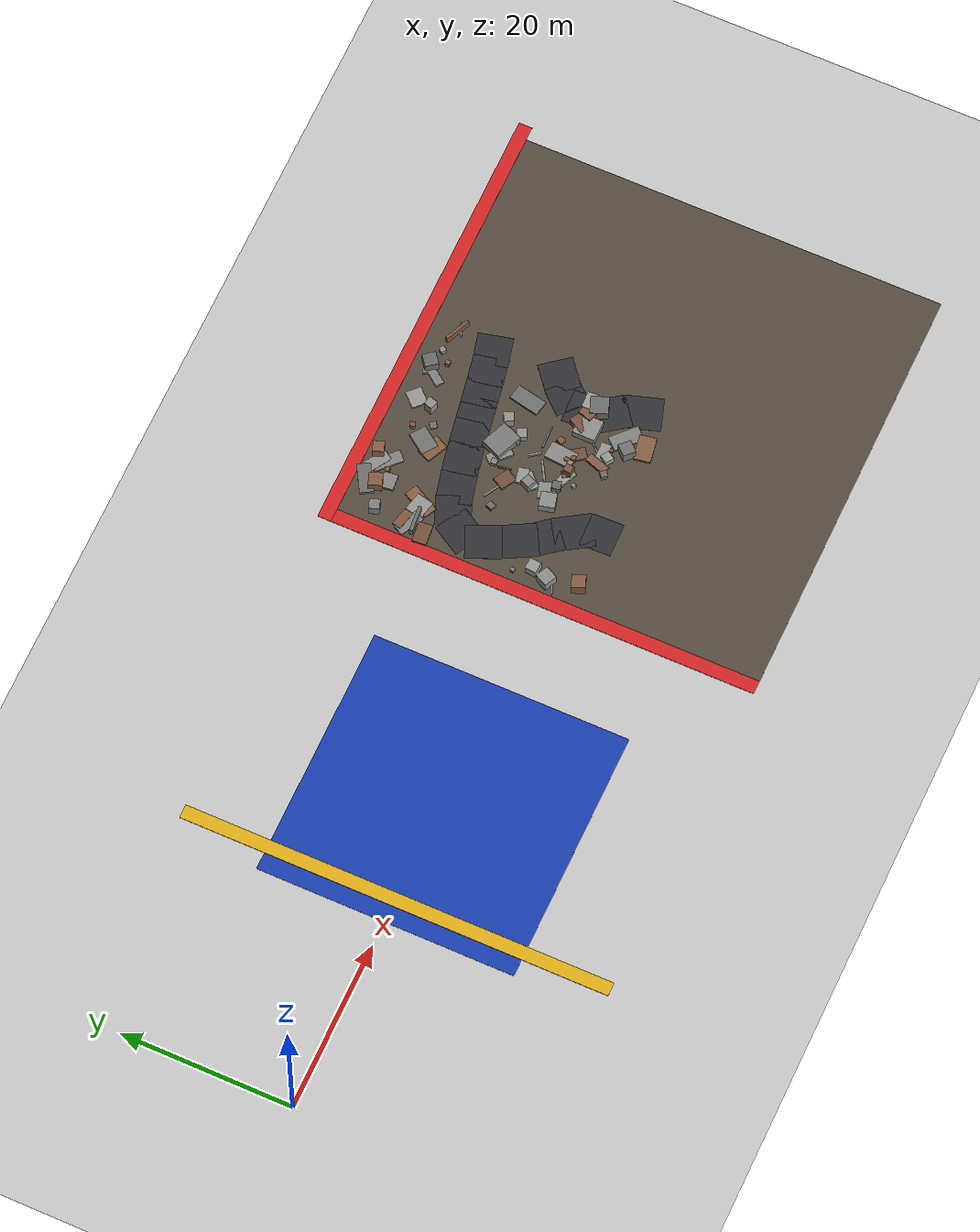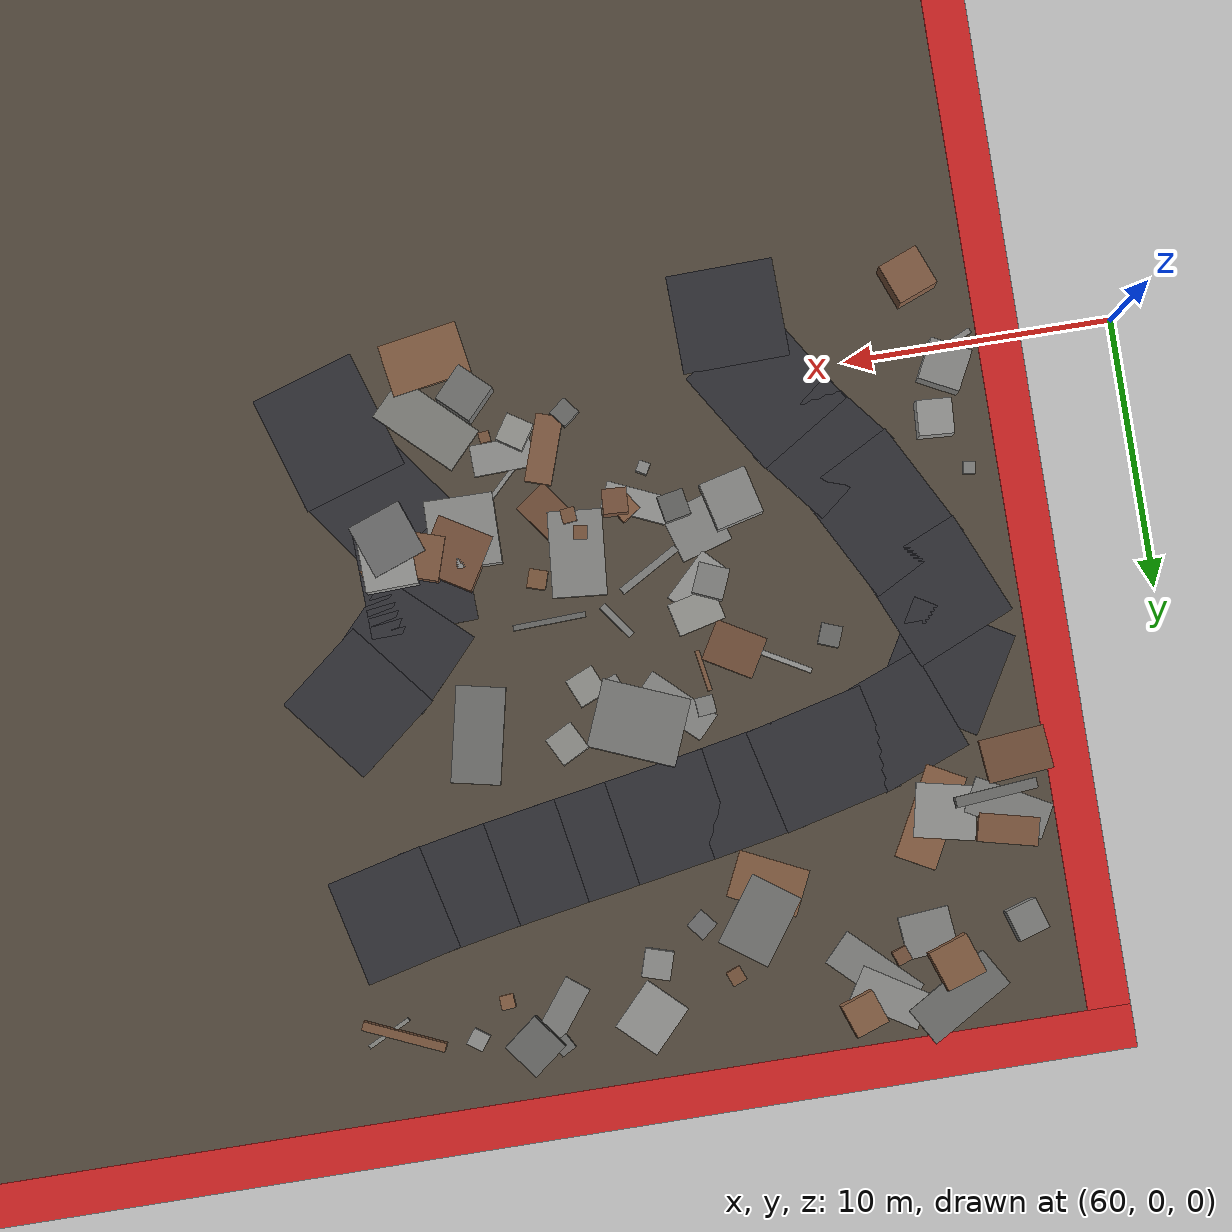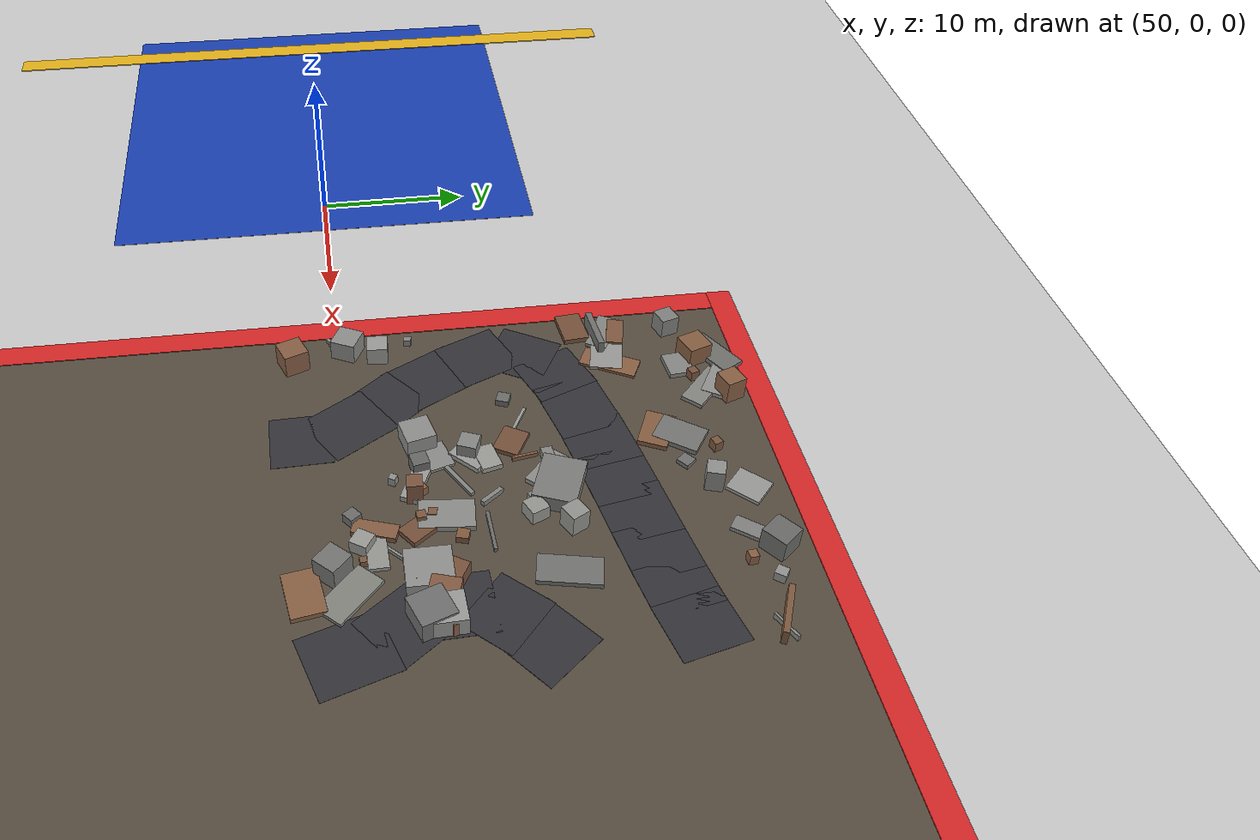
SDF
<sdf version="1.6">
 <world name="navitas_arena">
  <model name="ground_plane">
   <static>true</static>
   <link name="link">
    <collision name="collision">
     <geometry><plane><normal>0 0 1</normal><size>400 400</size></plane></geometry>
     <surface><friction><ode><mu>0.8</mu><mu2>0.8</mu2></ode></friction></surface>
    </collision>
    <visual name="visual">
     <cast_shadows>false</cast_shadows>
     <geometry><plane><normal>0 0 1</normal><size>400 400</size></plane></geometry>
     <material>
      <script><uri>file://media/materials/scripts/gazebo.material</uri><name>Gazebo/Grey</name></script>
     </material>
    </visual>
   </link>
  </model>
  <model name="landing">
   <static>true</static>
   <pose>38.000 0.000 0.010 0 0 0.000</pose>
   <link name="link">
    <collision name="col"><geometry><box><size>30.000 30.000 0.020</size></box></geometry></collision>
    <visual name="vis">
     <geometry><box><size>30.000 30.000 0.020</size></box></geometry>
     <material><ambient>0.10 0.25 0.70 1</ambient><diffuse>0.10 0.25 0.70 1</diffuse></material>
    </visual>
   </link>
  </model>
  <model name="brd_orta_E">
   <static>true</static>
   <pose>25.800 0.000 0.040 0 0 0.000</pose>
   <link name="link">
    <collision name="col"><geometry><box><size>1.600 50.000 0.080</size></box></geometry></collision>
    <visual name="vis">
     <geometry><box><size>1.600 50.000 0.080</size></box></geometry>
     <material><ambient>0.90 0.70 0.10 1</ambient><diffuse>0.90 0.70 0.10 1</diffuse></material>
    </visual>
   </link>
  </model>
  <model name="gd_zor">
   <static>true</static>
   <pose>90.000 0.000 0.010 0 0 0.000</pose>
   <link name="link">
    <collision name="col"><geometry><box><size>50.000 50.000 0.020</size></box></geometry></collision>
    <visual name="vis">
     <geometry><box><size>50.000 50.000 0.020</size></box></geometry>
     <material><ambient>0.34 0.30 0.25 1</ambient><diffuse>0.34 0.30 0.25 1</diffuse></material>
    </visual>
   </link>
  </model>
  <model name="brd_zor_N">
   <static>true</static>
   <pose>90.000 25.800 0.040 0 0 0.000</pose>
   <link name="link">
    <collision name="col"><geometry><box><size>53.200 1.600 0.080</size></box></geometry></collision>
    <visual name="vis">
     <geometry><box><size>53.200 1.600 0.080</size></box></geometry>
     <material><ambient>0.85 0.15 0.15 1</ambient><diffuse>0.85 0.15 0.15 1</diffuse></material>
    </visual>
   </link>
  </model>
  <model name="brd_zor_W">
   <static>true</static>
   <pose>64.200 0.000 0.040 0 0 0.000</pose>
   <link name="link">
    <collision name="col"><geometry><box><size>1.600 50.000 0.080</size></box></geometry></collision>
    <visual name="vis">
     <geometry><box><size>1.600 50.000 0.080</size></box></geometry>
     <material><ambient>0.85 0.15 0.15 1</ambient><diffuse>0.85 0.15 0.15 1</diffuse></material>
    </visual>
   </link>
  </model>
  <model name="road_zor_1_8">
   <static>true</static>
   <pose>73.981 -2.400 0.040 0 0 1.596</pose>
   <link name="link">
    <collision name="col"><geometry><box><size>3.701 4.000 0.020</size></box></geometry></collision>
    <visual name="vis">
     <geometry><box><size>3.701 4.000 0.020</size></box></geometry>
     <material><ambient>0.20 0.20 0.22 1</ambient><diffuse>0.20 0.20 0.22 1</diffuse></material>
    </visual>
   </link>
  </model>
  <model name="road_zor_1_9">
   <static>true</static>
   <pose>72.999 0.500 0.040 0 0 2.134</pose>
   <link name="link">
    <collision name="col"><geometry><box><size>4.448 4.000 0.020</size></box></geometry></collision>
    <visual name="vis">
     <geometry><box><size>4.448 4.000 0.020</size></box></geometry>
     <material><ambient>0.20 0.20 0.22 1</ambient><diffuse>0.20 0.20 0.22 1</diffuse></material>
    </visual>
   </link>
  </model>
  <model name="road_zor_1_10">
   <static>true</static>
   <pose>71.245 3.000 0.040 0 0 2.250</pose>
   <link name="link">
    <collision name="col"><geometry><box><size>3.470 4.000 0.020</size></box></geometry></collision>
    <visual name="vis">
     <geometry><box><size>3.470 4.000 0.020</size></box></geometry>
     <material><ambient>0.20 0.20 0.22 1</ambient><diffuse>0.20 0.20 0.22 1</diffuse></material>
    </visual>
   </link>
  </model>
  <model name="road_zor_1_11">
   <static>true</static>
   <pose>69.513 5.720 0.040 0 0 2.064</pose>
   <link name="link">
    <collision name="col"><geometry><box><size>4.806 4.000 0.020</size></box></geometry></collision>
    <visual name="vis">
     <geometry><box><size>4.806 4.000 0.020</size></box></geometry>
     <material><ambient>0.20 0.20 0.22 1</ambient><diffuse>0.20 0.20 0.22 1</diffuse></material>
    </visual>
   </link>
  </model>
  <model name="road_zor_1_12">
   <static>true</static>
   <pose>67.954 8.910 0.040 0 0 1.978</pose>
   <link name="link">
    <collision name="col"><geometry><box><size>4.101 4.000 0.020</size></box></geometry></collision>
    <visual name="vis">
     <geometry><box><size>4.101 4.000 0.020</size></box></geometry>
     <material><ambient>0.20 0.20 0.22 1</ambient><diffuse>0.20 0.20 0.22 1</diffuse></material>
    </visual>
   </link>
  </model>
  <model name="road_zor_1_13">
   <static>true</static>
   <pose>68.090 11.690 0.040 0 0 1.040</pose>
   <link name="link">
    <collision name="col"><geometry><box><size>3.938 4.000 0.020</size></box></geometry></collision>
    <visual name="vis">
     <geometry><box><size>3.938 4.000 0.020</size></box></geometry>
     <material><ambient>0.20 0.20 0.22 1</ambient><diffuse>0.20 0.20 0.22 1</diffuse></material>
    </visual>
   </link>
  </model>
  <model name="road_zor_1_14">
   <static>true</static>
   <pose>70.090 13.478 0.040 0 0 0.371</pose>
   <link name="link">
    <collision name="col"><geometry><box><size>3.540 4.000 0.020</size></box></geometry></collision>
    <visual name="vis">
     <geometry><box><size>3.540 4.000 0.020</size></box></geometry>
     <material><ambient>0.20 0.20 0.22 1</ambient><diffuse>0.20 0.20 0.22 1</diffuse></material>
    </visual>
   </link>
  </model>
  <model name="road_zor_1_15">
   <static>true</static>
   <pose>73.086 14.385 0.040 0 0 0.238</pose>
   <link name="link">
    <collision name="col"><geometry><box><size>4.534 4.000 0.020</size></box></geometry></collision>
    <visual name="vis">
     <geometry><box><size>4.534 4.000 0.020</size></box></geometry>
     <material><ambient>0.20 0.20 0.22 1</ambient><diffuse>0.20 0.20 0.22 1</diffuse></material>
    </visual>
   </link>
  </model>
  <model name="road_zor_1_16">
   <static>true</static>
   <pose>76.209 15.077 0.040 0 0 0.192</pose>
   <link name="link">
    <collision name="col"><geometry><box><size>3.666 4.000 0.020</size></box></geometry></collision>
    <visual name="vis">
     <geometry><box><size>3.666 4.000 0.020</size></box></geometry>
     <material><ambient>0.20 0.20 0.22 1</ambient><diffuse>0.20 0.20 0.22 1</diffuse></material>
    </visual>
   </link>
  </model>
  <model name="road_zor_1_17">
   <static>true</static>
   <pose>78.987 15.592 0.040 0 0 0.175</pose>
   <link name="link">
    <collision name="col"><geometry><box><size>3.784 4.000 0.020</size></box></geometry></collision>
    <visual name="vis">
     <geometry><box><size>3.784 4.000 0.020</size></box></geometry>
     <material><ambient>0.20 0.20 0.22 1</ambient><diffuse>0.20 0.20 0.22 1</diffuse></material>
    </visual>
   </link>
  </model>
  <model name="road_zor_1_18">
   <static>true</static>
   <pose>81.819 16.085 0.040 0 0 0.169</pose>
   <link name="link">
    <collision name="col"><geometry><box><size>3.765 4.000 0.020</size></box></geometry></collision>
    <visual name="vis">
     <geometry><box><size>3.765 4.000 0.020</size></box></geometry>
     <material><ambient>0.20 0.20 0.22 1</ambient><diffuse>0.20 0.20 0.22 1</diffuse></material>
    </visual>
   </link>
  </model>
  <model name="road_zor_1_19">
   <static>true</static>
   <pose>84.564 16.562 0.040 0 0 0.175</pose>
   <link name="link">
    <collision name="col"><geometry><box><size>3.609 4.000 0.020</size></box></geometry></collision>
    <visual name="vis">
     <geometry><box><size>3.609 4.000 0.020</size></box></geometry>
     <material><ambient>0.20 0.20 0.22 1</ambient><diffuse>0.20 0.20 0.22 1</diffuse></material>
    </visual>
   </link>
  </model>
  <model name="road_zor_1_20">
   <static>true</static>
   <pose>87.083 17.032 0.040 0 0 0.195</pose>
   <link name="link">
    <collision name="col"><geometry><box><size>3.316 4.000 0.020</size></box></geometry></collision>
    <visual name="vis">
     <geometry><box><size>3.316 4.000 0.020</size></box></geometry>
     <material><ambient>0.20 0.20 0.22 1</ambient><diffuse>0.20 0.20 0.22 1</diffuse></material>
    </visual>
   </link>
  </model>
  <model name="road_zor_1_21">
   <static>true</static>
   <pose>89.598 17.586 0.040 0 0 0.237</pose>
   <link name="link">
    <collision name="col"><geometry><box><size>3.635 4.000 0.020</size></box></geometry></collision>
    <visual name="vis">
     <geometry><box><size>3.635 4.000 0.020</size></box></geometry>
     <material><ambient>0.20 0.20 0.22 1</ambient><diffuse>0.20 0.20 0.22 1</diffuse></material>
    </visual>
   </link>
  </model>
  <model name="road_zor_2_7">
   <static>true</static>
   <pose>89.258 -0.417 0.040 0 0 1.880</pose>
   <link name="link">
    <collision name="col"><geometry><box><size>4.574 4.000 0.020</size></box></geometry></collision>
    <visual name="vis">
     <geometry><box><size>4.574 4.000 0.020</size></box></geometry>
     <material><ambient>0.20 0.20 0.22 1</ambient><diffuse>0.20 0.20 0.22 1</diffuse></material>
    </visual>
   </link>
  </model>
  <model name="road_zor_2_8">
   <static>true</static>
   <pose>87.836 2.500 0.040 0 0 2.208</pose>
   <link name="link">
    <collision name="col"><geometry><box><size>3.802 4.000 0.020</size></box></geometry></collision>
    <visual name="vis">
     <geometry><box><size>3.802 4.000 0.020</size></box></geometry>
     <material><ambient>0.20 0.20 0.22 1</ambient><diffuse>0.20 0.20 0.22 1</diffuse></material>
    </visual>
   </link>
  </model>
  <model name="road_zor_2_9">
   <static>true</static>
   <pose>86.917 5.279 0.040 0 0 1.606</pose>
   <link name="link">
    <collision name="col"><geometry><box><size>4.127 4.000 0.020</size></box></geometry></collision>
    <visual name="vis">
     <geometry><box><size>4.127 4.000 0.020</size></box></geometry>
     <material><ambient>0.20 0.20 0.22 1</ambient><diffuse>0.20 0.20 0.22 1</diffuse></material>
    </visual>
   </link>
  </model>
  <model name="road_zor_2_10">
   <static>true</static>
   <pose>87.715 7.813 0.040 0 0 0.823</pose>
   <link name="link">
    <collision name="col"><geometry><box><size>3.413 4.000 0.020</size></box></geometry></collision>
    <visual name="vis">
     <geometry><box><size>3.413 4.000 0.020</size></box></geometry>
     <material><ambient>0.20 0.20 0.22 1</ambient><diffuse>0.20 0.20 0.22 1</diffuse></material>
    </visual>
   </link>
  </model>
  <model name="road_zor_2_11">
   <static>true</static>
   <pose>89.699 9.646 0.040 0 0 0.679</pose>
   <link name="link">
    <collision name="col"><geometry><box><size>3.802 4.000 0.020</size></box></geometry></collision>
    <visual name="vis">
     <geometry><box><size>3.802 4.000 0.020</size></box></geometry>
     <material><ambient>0.20 0.20 0.22 1</ambient><diffuse>0.20 0.20 0.22 1</diffuse></material>
    </visual>
   </link>
  </model>
  <model name="blk_zor_2_1_0">
   <static>true</static>
   <pose>86.595 4.700 0.592 0 0 1.262</pose>
   <link name="link">
    <collision name="col"><geometry><box><size>1.661 1.661 1.183</size></box></geometry></collision>
    <visual name="vis">
     <geometry><box><size>1.661 1.661 1.183</size></box></geometry>
     <material><ambient>0.52 0.36 0.26 1</ambient><diffuse>0.52 0.36 0.26 1</diffuse></material>
    </visual>
   </link>
  </model>
  <model name="blk_zor_2_1_1">
   <static>true</static>
   <pose>87.674 3.941 0.677 0 0 0.349</pose>
   <link name="link">
    <collision name="col"><geometry><box><size>2.076 2.076 1.354</size></box></geometry></collision>
    <visual name="vis">
     <geometry><box><size>2.076 2.076 1.354</size></box></geometry>
     <material><ambient>0.44 0.44 0.44 1</ambient><diffuse>0.44 0.44 0.44 1</diffuse></material>
    </visual>
   </link>
  </model>
  <model name="blk_zor_2_1_2">
   <static>true</static>
   <pose>88.320 5.158 0.500 0 0 0.397</pose>
   <link name="link">
    <collision name="col"><geometry><box><size>0.818 0.818 1.000</size></box></geometry></collision>
    <visual name="vis">
     <geometry><box><size>0.818 0.818 1.000</size></box></geometry>
     <material><ambient>0.54 0.38 0.27 1</ambient><diffuse>0.54 0.38 0.27 1</diffuse></material>
    </visual>
   </link>
  </model>
  <model name="blk_zor_2_1_3">
   <static>true</static>
   <pose>85.297 4.806 0.500 0 0 1.031</pose>
   <link name="link">
    <collision name="col"><geometry><box><size>2.157 2.157 1.000</size></box></geometry></collision>
    <visual name="vis">
     <geometry><box><size>2.157 2.157 1.000</size></box></geometry>
     <material><ambient>0.48 0.33 0.24 1</ambient><diffuse>0.48 0.33 0.24 1</diffuse></material>
    </visual>
   </link>
  </model>
  <model name="blk_zor_2_1_4">
   <static>true</static>
   <pose>87.790 4.751 0.609 0 0 1.605</pose>
   <link name="link">
    <collision name="col"><geometry><box><size>1.947 1.947 1.217</size></box></geometry></collision>
    <visual name="vis">
     <geometry><box><size>1.947 1.947 1.217</size></box></geometry>
     <material><ambient>0.61 0.61 0.60 1</ambient><diffuse>0.61 0.61 0.60 1</diffuse></material>
    </visual>
   </link>
  </model>
  <model name="blk_zor_2_1_5">
   <static>true</static>
   <pose>84.900 4.077 0.500 0 0 3.135</pose>
   <link name="link">
    <collision name="col"><geometry><box><size>2.547 2.620 1.000</size></box></geometry></collision>
    <visual name="vis">
     <geometry><box><size>2.547 2.620 1.000</size></box></geometry>
     <material><ambient>0.57 0.57 0.56 1</ambient><diffuse>0.57 0.57 0.56 1</diffuse></material>
    </visual>
   </link>
  </model>
  <model name="deb_zor_1">
   <static>true</static>
   <pose>81.657 4.498 0.164 0 0 2.081</pose>
   <link name="link">
    <collision name="col"><geometry><box><size>1.617 0.270 0.327</size></box></geometry></collision>
    <visual name="vis">
     <geometry><box><size>1.617 0.270 0.327</size></box></geometry>
     <material><ambient>0.52 0.36 0.26 1</ambient><diffuse>0.52 0.36 0.26 1</diffuse></material>
    </visual>
   </link>
  </model>
  <model name="deb_zor_7">
   <static>true</static>
   <pose>69.517 22.466 0.672 0 0 1.906</pose>
   <link name="link">
    <collision name="col"><geometry><box><size>1.558 1.558 1.343</size></box></geometry></collision>
    <visual name="vis">
     <geometry><box><size>1.558 1.558 1.343</size></box></geometry>
     <material><ambient>0.53 0.37 0.26 1</ambient><diffuse>0.53 0.37 0.26 1</diffuse></material>
    </visual>
   </link>
  </model>
  <model name="deb_zor_9">
   <static>true</static>
   <pose>66.081 15.310 0.171 0 0 0.093</pose>
   <link name="link">
    <collision name="col"><geometry><box><size>2.447 1.630 0.343</size></box></geometry></collision>
    <visual name="vis">
     <geometry><box><size>2.447 1.630 0.343</size></box></geometry>
     <material><ambient>0.46 0.32 0.23 1</ambient><diffuse>0.46 0.32 0.23 1</diffuse></material>
    </visual>
   </link>
  </model>
  <model name="deb_zor_14">
   <static>true</static>
   <pose>81.544 4.062 0.175 0 0 2.206</pose>
   <link name="link">
    <collision name="col"><geometry><box><size>2.422 1.370 0.350</size></box></geometry></collision>
    <visual name="vis">
     <geometry><box><size>2.422 1.370 0.350</size></box></geometry>
     <material><ambient>0.46 0.32 0.23 1</ambient><diffuse>0.46 0.32 0.23 1</diffuse></material>
    </visual>
   </link>
  </model>
  <model name="deb_zor_21">
   <static>true</static>
   <pose>80.640 4.706 0.206 0 0 1.418</pose>
   <link name="link">
    <collision name="col"><geometry><box><size>0.514 0.514 0.413</size></box></geometry></collision>
    <visual name="vis">
     <geometry><box><size>0.514 0.514 0.413</size></box></geometry>
     <material><ambient>0.50 0.35 0.25 1</ambient><diffuse>0.50 0.35 0.25 1</diffuse></material>
    </visual>
   </link>
  </model>
  <model name="deb_zor_23">
   <static>true</static>
   <pose>87.212 22.536 0.300 0 0 0.940</pose>
   <link name="link">
    <collision name="col"><geometry><box><size>0.651 0.651 0.601</size></box></geometry></collision>
    <visual name="vis">
     <geometry><box><size>0.651 0.651 0.601</size></box></geometry>
     <material><ambient>0.58 0.58 0.57 1</ambient><diffuse>0.58 0.58 0.57 1</diffuse></material>
    </visual>
   </link>
  </model>
  <model name="deb_zor_24">
   <static>true</static>
   <pose>66.731 21.329 0.656 0 0 0.302</pose>
   <link name="link">
    <collision name="col"><geometry><box><size>1.196 1.196 1.311</size></box></geometry></collision>
    <visual name="vis">
     <geometry><box><size>1.196 1.196 1.311</size></box></geometry>
     <material><ambient>0.51 0.51 0.50 1</ambient><diffuse>0.51 0.51 0.50 1</diffuse></material>
    </visual>
   </link>
  </model>
  <model name="deb_zor_25">
   <static>true</static>
   <pose>78.870 4.072 0.288 0 0 0.572</pose>
   <link name="link">
    <collision name="col"><geometry><box><size>0.795 0.795 0.576</size></box></geometry></collision>
    <visual name="vis">
     <geometry><box><size>0.795 0.795 0.576</size></box></geometry>
     <material><ambient>0.55 0.38 0.27 1</ambient><diffuse>0.55 0.38 0.27 1</diffuse></material>
    </visual>
   </link>
  </model>
  <model name="deb_zor_28">
   <static>true</static>
   <pose>76.947 10.473 0.149 0 0 1.732</pose>
   <link name="link">
    <collision name="col"><geometry><box><size>1.546 0.163 0.298</size></box></geometry></collision>
    <visual name="vis">
     <geometry><box><size>1.546 0.163 0.298</size></box></geometry>
     <material><ambient>0.51 0.36 0.26 1</ambient><diffuse>0.51 0.36 0.26 1</diffuse></material>
    </visual>
   </link>
  </model>
  <model name="deb_zor_29">
   <static>true</static>
   <pose>76.374 5.184 0.101 0 0 1.869</pose>
   <link name="link">
    <collision name="col"><geometry><box><size>1.934 1.981 0.203</size></box></geometry></collision>
    <visual name="vis">
     <geometry><box><size>1.934 1.981 0.203</size></box></geometry>
     <material><ambient>0.55 0.55 0.54 1</ambient><diffuse>0.55 0.55 0.54 1</diffuse></material>
    </visual>
   </link>
  </model>
  <model name="deb_zor_30">
   <static>true</static>
   <pose>67.268 -2.679 0.756 0 0 0.373</pose>
   <link name="link">
    <collision name="col"><geometry><box><size>1.571 1.571 1.512</size></box></geometry></collision>
    <visual name="vis">
     <geometry><box><size>1.571 1.571 1.512</size></box></geometry>
     <material><ambient>0.53 0.37 0.27 1</ambient><diffuse>0.53 0.37 0.27 1</diffuse></material>
    </visual>
   </link>
  </model>
  <model name="deb_zor_31">
   <static>true</static>
   <pose>66.803 17.996 0.161 0 0 2.906</pose>
   <link name="link">
    <collision name="col"><geometry><box><size>2.246 1.058 0.321</size></box></geometry></collision>
    <visual name="vis">
     <geometry><box><size>2.246 1.058 0.321</size></box></geometry>
     <material><ambient>0.51 0.35 0.25 1</ambient><diffuse>0.51 0.35 0.25 1</diffuse></material>
    </visual>
   </link>
  </model>
  <model name="deb_zor_35">
   <static>true</static>
   <pose>69.572 23.772 0.183 0 0 0.531</pose>
   <link name="link">
    <collision name="col"><geometry><box><size>3.507 1.573 0.367</size></box></geometry></collision>
    <visual name="vis">
     <geometry><box><size>3.507 1.573 0.367</size></box></geometry>
     <material><ambient>0.44 0.44 0.43 1</ambient><diffuse>0.44 0.44 0.43 1</diffuse></material>
    </visual>
   </link>
  </model>
  <model name="deb_zor_38">
   <static>true</static>
   <pose>81.293 10.392 0.460 0 0 0.405</pose>
   <link name="link">
    <collision name="col"><geometry><box><size>1.118 1.118 0.919</size></box></geometry></collision>
    <visual name="vis">
     <geometry><box><size>1.118 1.118 0.919</size></box></geometry>
     <material><ambient>0.59 0.59 0.57 1</ambient><diffuse>0.59 0.59 0.57 1</diffuse></material>
    </visual>
   </link>
  </model>
  <model name="deb_zor_39">
   <static>true</static>
   <pose>77.532 21.726 0.340 0 0 0.372</pose>
   <link name="link">
    <collision name="col"><geometry><box><size>0.562 0.562 0.680</size></box></geometry></collision>
    <visual name="vis">
     <geometry><box><size>0.562 0.562 0.680</size></box></geometry>
     <material><ambient>0.48 0.34 0.24 1</ambient><diffuse>0.48 0.34 0.24 1</diffuse></material>
    </visual>
   </link>
  </model>
  <model name="deb_zor_41">
   <static>true</static>
   <pose>72.139 9.915 0.223 0 0 2.780</pose>
   <link name="link">
    <collision name="col"><geometry><box><size>0.787 0.787 0.446</size></box></geometry></collision>
    <visual name="vis">
     <geometry><box><size>0.787 0.787 0.446</size></box></geometry>
     <material><ambient>0.43 0.43 0.42 1</ambient><diffuse>0.43 0.43 0.42 1</diffuse></material>
    </visual>
   </link>
  </model>
  <model name="deb_zor_42">
   <static>true</static>
   <pose>82.469 6.184 0.225 0 0 1.265</pose>
   <link name="link">
    <collision name="col"><geometry><box><size>0.704 0.704 0.450</size></box></geometry></collision>
    <visual name="vis">
     <geometry><box><size>0.704 0.704 0.450</size></box></geometry>
     <material><ambient>0.51 0.36 0.25 1</ambient><diffuse>0.51 0.36 0.25 1</diffuse></material>
    </visual>
   </link>
  </model>
  <model name="deb_zor_43">
   <static>true</static>
   <pose>80.819 22.749 0.129 0 0 2.381</pose>
   <link name="link">
    <collision name="col"><geometry><box><size>1.839 2.060 0.258</size></box></geometry></collision>
    <visual name="vis">
     <geometry><box><size>1.839 2.060 0.258</size></box></geometry>
     <material><ambient>0.60 0.60 0.59 1</ambient><diffuse>0.60 0.60 0.59 1</diffuse></material>
    </visual>
   </link>
  </model>
  <model name="deb_zor_44">
   <static>true</static>
   <pose>78.476 19.684 0.156 0 0 0.688</pose>
   <link name="link">
    <collision name="col"><geometry><box><size>0.789 0.789 0.311</size></box></geometry></collision>
    <visual name="vis">
     <geometry><box><size>0.789 0.789 0.311</size></box></geometry>
     <material><ambient>0.44 0.44 0.44 1</ambient><diffuse>0.44 0.44 0.44 1</diffuse></material>
    </visual>
   </link>
  </model>
  <model name="deb_zor_48">
   <static>true</static>
   <pose>77.087 11.765 0.294 0 0 0.093</pose>
   <link name="link">
    <collision name="col"><geometry><box><size>0.678 0.678 0.587</size></box></geometry></collision>
    <visual name="vis">
     <geometry><box><size>0.678 0.678 0.587</size></box></geometry>
     <material><ambient>0.53 0.53 0.52 1</ambient><diffuse>0.53 0.53 0.52 1</diffuse></material>
    </visual>
   </link>
  </model>
  <model name="deb_zor_58">
   <static>true</static>
   <pose>82.274 7.775 0.131 0 0 0.036</pose>
   <link name="link">
    <collision name="col"><geometry><box><size>2.710 0.201 0.261</size></box></geometry></collision>
    <visual name="vis">
     <geometry><box><size>2.710 0.201 0.261</size></box></geometry>
     <material><ambient>0.42 0.42 0.41 1</ambient><diffuse>0.42 0.42 0.41 1</diffuse></material>
    </visual>
   </link>
  </model>
  <model name="deb_zor_65">
   <static>true</static>
   <pose>82.320 12.370 0.691 0 0 0.482</pose>
   <link name="link">
    <collision name="col"><geometry><box><size>1.138 1.138 1.381</size></box></geometry></collision>
    <visual name="vis">
     <geometry><box><size>1.138 1.138 1.381</size></box></geometry>
     <material><ambient>0.58 0.58 0.56 1</ambient><diffuse>0.58 0.58 0.56 1</diffuse></material>
    </visual>
   </link>
  </model>
  <model name="deb_zor_68">
   <static>true</static>
   <pose>77.977 2.718 0.291 0 0 1.060</pose>
   <link name="link">
    <collision name="col"><geometry><box><size>0.427 0.427 0.582</size></box></geometry></collision>
    <visual name="vis">
     <geometry><box><size>0.427 0.427 0.582</size></box></geometry>
     <material><ambient>0.57 0.57 0.56 1</ambient><diffuse>0.57 0.57 0.56 1</diffuse></material>
    </visual>
   </link>
  </model>
  <model name="deb_zor_72">
   <static>true</static>
   <pose>90.416 21.797 0.188 0 0 0.460</pose>
   <link name="link">
    <collision name="col"><geometry><box><size>1.754 0.152 0.376</size></box></geometry></collision>
    <visual name="vis">
     <geometry><box><size>1.754 0.152 0.376</size></box></geometry>
     <material><ambient>0.54 0.54 0.52 1</ambient><diffuse>0.54 0.54 0.52 1</diffuse></material>
    </visual>
   </link>
  </model>
  <model name="deb_zor_73">
   <static>true</static>
   <pose>76.351 19.862 0.169 0 0 0.951</pose>
   <link name="link">
    <collision name="col"><geometry><box><size>2.802 2.025 0.339</size></box></geometry></collision>
    <visual name="vis">
     <geometry><box><size>2.802 2.025 0.339</size></box></geometry>
     <material><ambient>0.46 0.46 0.45 1</ambient><diffuse>0.46 0.46 0.45 1</diffuse></material>
    </visual>
   </link>
  </model>
  <model name="deb_zor_74">
   <static>true</static>
   <pose>76.862 8.278 0.181 0 0 0.234</pose>
   <link name="link">
    <collision name="col"><geometry><box><size>1.803 1.239 0.362</size></box></geometry></collision>
    <visual name="vis">
     <geometry><box><size>1.803 1.239 0.362</size></box></geometry>
     <material><ambient>0.61 0.61 0.59 1</ambient><diffuse>0.61 0.61 0.59 1</diffuse></material>
    </visual>
   </link>
  </model>
  <model name="deb_zor_75">
   <static>true</static>
   <pose>76.684 7.221 0.174 0 0 0.780</pose>
   <link name="link">
    <collision name="col"><geometry><box><size>2.151 1.060 0.347</size></box></geometry></collision>
    <visual name="vis">
     <geometry><box><size>2.151 1.060 0.347</size></box></geometry>
     <material><ambient>0.61 0.61 0.60 1</ambient><diffuse>0.61 0.61 0.60 1</diffuse></material>
    </visual>
   </link>
  </model>
  <model name="deb_zor_76">
   <static>true</static>
   <pose>78.431 3.960 0.192 0 0 2.724</pose>
   <link name="link">
    <collision name="col"><geometry><box><size>2.463 1.018 0.385</size></box></geometry></collision>
    <visual name="vis">
     <geometry><box><size>2.463 1.018 0.385</size></box></geometry>
     <material><ambient>0.61 0.61 0.60 1</ambient><diffuse>0.61 0.61 0.60 1</diffuse></material>
    </visual>
   </link>
  </model>
  <model name="deb_zor_79">
   <static>true</static>
   <pose>83.266 2.525 0.128 0 0 0.778</pose>
   <link name="link">
    <collision name="col"><geometry><box><size>2.669 0.157 0.256</size></box></geometry></collision>
    <visual name="vis">
     <geometry><box><size>2.669 0.157 0.256</size></box></geometry>
     <material><ambient>0.57 0.57 0.56 1</ambient><diffuse>0.57 0.57 0.56 1</diffuse></material>
    </visual>
   </link>
  </model>
  <model name="deb_zor_81">
   <static>true</static>
   <pose>73.152 23.781 0.768 0 0 1.911</pose>
   <link name="link">
    <collision name="col"><geometry><box><size>1.287 1.287 1.535</size></box></geometry></collision>
    <visual name="vis">
     <geometry><box><size>1.287 1.287 1.535</size></box></geometry>
     <material><ambient>0.54 0.38 0.27 1</ambient><diffuse>0.54 0.38 0.27 1</diffuse></material>
    </visual>
   </link>
  </model>
  <model name="deb_zor_87">
   <static>true</static>
   <pose>83.056 1.459 0.138 0 0 0.030</pose>
   <link name="link">
    <collision name="col"><geometry><box><size>2.255 1.155 0.276</size></box></geometry></collision>
    <visual name="vis">
     <geometry><box><size>2.255 1.155 0.276</size></box></geometry>
     <material><ambient>0.59 0.59 0.58 1</ambient><diffuse>0.59 0.59 0.58 1</diffuse></material>
    </visual>
   </link>
  </model>
  <model name="deb_zor_89">
   <static>true</static>
   <pose>68.966 16.988 0.111 0 0 2.928</pose>
   <link name="link">
    <collision name="col"><geometry><box><size>2.290 2.021 0.222</size></box></geometry></collision>
    <visual name="vis">
     <geometry><box><size>2.290 2.021 0.222</size></box></geometry>
     <material><ambient>0.60 0.60 0.59 1</ambient><diffuse>0.60 0.60 0.59 1</diffuse></material>
    </visual>
   </link>
  </model>
  <model name="deb_zor_90">
   <static>true</static>
   <pose>84.146 23.235 0.210 0 0 0.497</pose>
   <link name="link">
    <collision name="col"><geometry><box><size>0.612 0.612 0.419</size></box></geometry></collision>
    <visual name="vis">
     <geometry><box><size>0.612 0.612 0.419</size></box></geometry>
     <material><ambient>0.44 0.44 0.43 1</ambient><diffuse>0.44 0.44 0.43 1</diffuse></material>
    </visual>
   </link>
  </model>
  <model name="deb_zor_93">
   <static>true</static>
   <pose>80.872 5.459 0.179 0 0 1.483</pose>
   <link name="link">
    <collision name="col"><geometry><box><size>3.191 2.021 0.357</size></box></geometry></collision>
    <visual name="vis">
     <geometry><box><size>3.191 2.021 0.357</size></box></geometry>
     <material><ambient>0.55 0.55 0.54 1</ambient><diffuse>0.55 0.55 0.54 1</diffuse></material>
    </visual>
   </link>
  </model>
  <model name="deb_zor_98">
   <static>true</static>
   <pose>66.075 -0.056 0.133 0 0 0.425</pose>
   <link name="link">
    <collision name="col"><geometry><box><size>1.882 0.211 0.266</size></box></geometry></collision>
    <visual name="vis">
     <geometry><box><size>1.882 0.211 0.266</size></box></geometry>
     <material><ambient>0.55 0.55 0.54 1</ambient><diffuse>0.55 0.55 0.54 1</diffuse></material>
    </visual>
   </link>
  </model>
  <model name="deb_zor_102">
   <static>true</static>
   <pose>80.310 20.816 0.739 0 0 1.269</pose>
   <link name="link">
    <collision name="col"><geometry><box><size>1.054 1.054 1.477</size></box></geometry></collision>
    <visual name="vis">
     <geometry><box><size>1.054 1.054 1.477</size></box></geometry>
     <material><ambient>0.57 0.57 0.56 1</ambient><diffuse>0.57 0.57 0.56 1</diffuse></material>
    </visual>
   </link>
  </model>
  <model name="deb_zor_103">
   <static>true</static>
   <pose>79.808 8.152 0.175 0 0 2.205</pose>
   <link name="link">
    <collision name="col"><geometry><box><size>1.526 0.260 0.350</size></box></geometry></collision>
    <visual name="vis">
     <geometry><box><size>1.526 0.260 0.350</size></box></geometry>
     <material><ambient>0.52 0.52 0.51 1</ambient><diffuse>0.52 0.52 0.51 1</diffuse></material>
    </visual>
   </link>
  </model>
  <model name="deb_zor_105">
   <static>true</static>
   <pose>81.494 1.459 0.195 0 0 1.245</pose>
   <link name="link">
    <collision name="col"><geometry><box><size>2.560 1.002 0.389</size></box></geometry></collision>
    <visual name="vis">
     <geometry><box><size>2.560 1.002 0.389</size></box></geometry>
     <material><ambient>0.53 0.37 0.27 1</ambient><diffuse>0.53 0.37 0.27 1</diffuse></material>
    </visual>
   </link>
  </model>
  <model name="deb_zor_114">
   <static>true</static>
   <pose>85.167 23.073 0.715 0 0 2.230</pose>
   <link name="link">
    <collision name="col"><geometry><box><size>1.560 1.560 1.429</size></box></geometry></collision>
    <visual name="vis">
     <geometry><box><size>1.560 1.560 1.429</size></box></geometry>
     <material><ambient>0.42 0.42 0.41 1</ambient><diffuse>0.42 0.42 0.41 1</diffuse></material>
    </visual>
   </link>
  </model>
  <model name="deb_zor_116">
   <static>true</static>
   <pose>80.342 10.477 0.304 0 0 0.368</pose>
   <link name="link">
    <collision name="col"><geometry><box><size>0.603 0.603 0.608</size></box></geometry></collision>
    <visual name="vis">
     <geometry><box><size>0.603 0.603 0.608</size></box></geometry>
     <material><ambient>0.55 0.55 0.54 1</ambient><diffuse>0.55 0.55 0.54 1</diffuse></material>
    </visual>
   </link>
  </model>
  <model name="deb_zor_123">
   <static>true</static>
   <pose>66.661 17.218 0.116 0 0 2.644</pose>
   <link name="link">
    <collision name="col"><geometry><box><size>3.024 1.367 0.232</size></box></geometry></collision>
    <visual name="vis">
     <geometry><box><size>3.024 1.367 0.232</size></box></geometry>
     <material><ambient>0.52 0.52 0.51 1</ambient><diffuse>0.52 0.52 0.51 1</diffuse></material>
    </visual>
   </link>
  </model>
  <model name="deb_zor_125">
   <static>true</static>
   <pose>78.339 6.472 0.117 0 0 0.521</pose>
   <link name="link">
    <collision name="col"><geometry><box><size>2.581 0.270 0.235</size></box></geometry></collision>
    <visual name="vis">
     <geometry><box><size>2.581 0.270 0.235</size></box></geometry>
     <material><ambient>0.52 0.52 0.51 1</ambient><diffuse>0.52 0.52 0.51 1</diffuse></material>
    </visual>
   </link>
  </model>
  <model name="deb_zor_128">
   <static>true</static>
   <pose>79.208 3.853 0.724 0 0 1.517</pose>
   <link name="link">
    <collision name="col"><geometry><box><size>0.922 0.922 1.448</size></box></geometry></collision>
    <visual name="vis">
     <geometry><box><size>0.922 0.922 1.448</size></box></geometry>
     <material><ambient>0.49 0.34 0.25 1</ambient><diffuse>0.49 0.34 0.25 1</diffuse></material>
    </visual>
   </link>
  </model>
  <model name="deb_zor_129">
   <static>true</static>
   <pose>84.056 -0.939 0.716 0 0 0.814</pose>
   <link name="link">
    <collision name="col"><geometry><box><size>1.505 1.505 1.432</size></box></geometry></collision>
    <visual name="vis">
     <geometry><box><size>1.505 1.505 1.432</size></box></geometry>
     <material><ambient>0.46 0.46 0.45 1</ambient><diffuse>0.46 0.46 0.45 1</diffuse></material>
    </visual>
   </link>
  </model>
  <model name="deb_zor_132">
   <static>true</static>
   <pose>72.071 23.396 0.150 0 0 2.589</pose>
   <link name="link">
    <collision name="col"><geometry><box><size>2.708 1.400 0.300</size></box></geometry></collision>
    <visual name="vis">
     <geometry><box><size>2.708 1.400 0.300</size></box></geometry>
     <material><ambient>0.57 0.57 0.56 1</ambient><diffuse>0.57 0.57 0.56 1</diffuse></material>
    </visual>
   </link>
  </model>
  <model name="deb_zor_135">
   <static>true</static>
   <pose>85.650 -0.163 0.123 0 0 2.383</pose>
   <link name="link">
    <collision name="col"><geometry><box><size>3.534 1.782 0.246</size></box></geometry></collision>
    <visual name="vis">
     <geometry><box><size>3.534 1.782 0.246</size></box></geometry>
     <material><ambient>0.52 0.52 0.50 1</ambient><diffuse>0.52 0.52 0.50 1</diffuse></material>
    </visual>
   </link>
  </model>
  <model name="deb_zor_146">
   <static>true</static>
   <pose>85.511 11.515 0.160 0 0 1.362</pose>
   <link name="link">
    <collision name="col"><geometry><box><size>3.596 1.840 0.320</size></box></geometry></collision>
    <visual name="vis">
     <geometry><box><size>3.596 1.840 0.320</size></box></geometry>
     <material><ambient>0.45 0.45 0.44 1</ambient><diffuse>0.45 0.45 0.44 1</diffuse></material>
    </visual>
   </link>
  </model>
  <model name="deb_zor_149">
   <static>true</static>
   <pose>85.333 -2.540 0.167 0 0 0.164</pose>
   <link name="link">
    <collision name="col"><geometry><box><size>3.008 1.966 0.333</size></box></geometry></collision>
    <visual name="vis">
     <geometry><box><size>3.008 1.966 0.333</size></box></geometry>
     <material><ambient>0.54 0.38 0.27 1</ambient><diffuse>0.54 0.38 0.27 1</diffuse></material>
    </visual>
   </link>
  </model>
  <model name="deb_zor_151">
   <static>true</static>
   <pose>82.455 0.705 0.418 0 0 0.994</pose>
   <link name="link">
    <collision name="col"><geometry><box><size>1.066 1.066 0.835</size></box></geometry></collision>
    <visual name="vis">
     <geometry><box><size>1.066 1.066 0.835</size></box></geometry>
     <material><ambient>0.61 0.61 0.59 1</ambient><diffuse>0.61 0.61 0.59 1</diffuse></material>
    </visual>
   </link>
  </model>
  <model name="deb_zor_153">
   <static>true</static>
   <pose>66.439 0.782 0.677 0 0 2.670</pose>
   <link name="link">
    <collision name="col"><geometry><box><size>1.588 1.588 1.354</size></box></geometry></collision>
    <visual name="vis">
     <geometry><box><size>1.588 1.588 1.354</size></box></geometry>
     <material><ambient>0.56 0.56 0.55 1</ambient><diffuse>0.56 0.56 0.55 1</diffuse></material>
    </visual>
   </link>
  </model>
  <model name="deb_zor_156">
   <static>true</static>
   <pose>78.143 11.597 0.163 0 0 2.388</pose>
   <link name="link">
    <collision name="col"><geometry><box><size>2.888 1.140 0.326</size></box></geometry></collision>
    <visual name="vis">
     <geometry><box><size>2.888 1.140 0.326</size></box></geometry>
     <material><ambient>0.55 0.55 0.54 1</ambient><diffuse>0.55 0.55 0.54 1</diffuse></material>
    </visual>
   </link>
  </model>
  <model name="deb_zor_163">
   <static>true</static>
   <pose>83.583 0.679 0.213 0 0 0.106</pose>
   <link name="link">
    <collision name="col"><geometry><box><size>0.406 0.406 0.427</size></box></geometry></collision>
    <visual name="vis">
     <geometry><box><size>0.406 0.406 0.427</size></box></geometry>
     <material><ambient>0.49 0.35 0.25 1</ambient><diffuse>0.49 0.35 0.25 1</diffuse></material>
    </visual>
   </link>
  </model>
  <model name="deb_zor_164">
   <static>true</static>
   <pose>74.164 10.444 0.110 0 0 2.629</pose>
   <link name="link">
    <collision name="col"><geometry><box><size>2.651 0.184 0.220</size></box></geometry></collision>
    <visual name="vis">
     <geometry><box><size>2.651 0.184 0.220</size></box></geometry>
     <material><ambient>0.61 0.61 0.60 1</ambient><diffuse>0.61 0.61 0.60 1</diffuse></material>
    </visual>
   </link>
  </model>
  <model name="deb_zor_165">
   <static>true</static>
   <pose>72.498 22.442 0.140 0 0 2.378</pose>
   <link name="link">
    <collision name="col"><geometry><box><size>3.424 1.407 0.281</size></box></geometry></collision>
    <visual name="vis">
     <geometry><box><size>3.424 1.407 0.281</size></box></geometry>
     <material><ambient>0.52 0.52 0.51 1</ambient><diffuse>0.52 0.52 0.51 1</diffuse></material>
    </visual>
   </link>
  </model>
  <model name="deb_zor_167">
   <static>true</static>
   <pose>69.535 17.101 0.100 0 0 1.077</pose>
   <link name="link">
    <collision name="col"><geometry><box><size>3.593 1.570 0.201</size></box></geometry></collision>
    <visual name="vis">
     <geometry><box><size>3.593 1.570 0.201</size></box></geometry>
     <material><ambient>0.55 0.38 0.27 1</ambient><diffuse>0.55 0.38 0.27 1</diffuse></material>
    </visual>
   </link>
  </model>
  <model name="deb_zor_176">
   <static>true</static>
   <pose>84.191 22.227 0.142 0 0 0.919</pose>
   <link name="link">
    <collision name="col"><geometry><box><size>2.904 1.010 0.285</size></box></geometry></collision>
    <visual name="vis">
     <geometry><box><size>2.904 1.010 0.285</size></box></geometry>
     <material><ambient>0.51 0.51 0.50 1</ambient><diffuse>0.51 0.51 0.50 1</diffuse></material>
    </visual>
   </link>
  </model>
  <model name="deb_zor_178">
   <static>true</static>
   <pose>77.085 4.320 0.472 0 0 1.759</pose>
   <link name="link">
    <collision name="col"><geometry><box><size>0.990 0.990 0.943</size></box></geometry></collision>
    <visual name="vis">
     <geometry><box><size>0.990 0.990 0.943</size></box></geometry>
     <material><ambient>0.41 0.41 0.40 1</ambient><diffuse>0.41 0.41 0.40 1</diffuse></material>
    </visual>
   </link>
  </model>
  <model name="deb_zor_179">
   <static>true</static>
   <pose>75.843 18.570 0.169 0 0 2.696</pose>
   <link name="link">
    <collision name="col"><geometry><box><size>2.675 1.772 0.337</size></box></geometry></collision>
    <visual name="vis">
     <geometry><box><size>2.675 1.772 0.337</size></box></geometry>
     <material><ambient>0.53 0.37 0.26 1</ambient><diffuse>0.53 0.37 0.26 1</diffuse></material>
    </visual>
   </link>
  </model>
  <model name="deb_zor_183">
   <static>true</static>
   <pose>71.427 21.945 0.340 0 0 1.899</pose>
   <link name="link">
    <collision name="col"><geometry><box><size>0.556 0.556 0.681</size></box></geometry></collision>
    <visual name="vis">
     <geometry><box><size>0.556 0.556 0.681</size></box></geometry>
     <material><ambient>0.47 0.33 0.24 1</ambient><diffuse>0.47 0.33 0.24 1</diffuse></material>
    </visual>
   </link>
  </model>
  <model name="deb_zor_184">
   <static>true</static>
   <pose>75.698 9.857 0.153 0 0 2.615</pose>
   <link name="link">
    <collision name="col"><geometry><box><size>1.984 1.578 0.306</size></box></geometry></collision>
    <visual name="vis">
     <geometry><box><size>1.984 1.578 0.306</size></box></geometry>
     <material><ambient>0.46 0.32 0.23 1</ambient><diffuse>0.46 0.32 0.23 1</diffuse></material>
    </visual>
   </link>
  </model>
  <model name="deb_zor_187">
   <static>true</static>
   <pose>67.094 2.623 0.604 0 0 1.507</pose>
   <link name="link">
    <collision name="col"><geometry><box><size>1.316 1.316 1.207</size></box></geometry></collision>
    <visual name="vis">
     <geometry><box><size>1.316 1.316 1.207</size></box></geometry>
     <material><ambient>0.61 0.61 0.60 1</ambient><diffuse>0.61 0.61 0.60 1</diffuse></material>
    </visual>
   </link>
  </model>
  <model name="deb_zor_188">
   <static>true</static>
   <pose>66.083 4.610 0.241 0 0 1.402</pose>
   <link name="link">
    <collision name="col"><geometry><box><size>0.452 0.452 0.482</size></box></geometry></collision>
    <visual name="vis">
     <geometry><box><size>0.452 0.452 0.482</size></box></geometry>
     <material><ambient>0.52 0.52 0.51 1</ambient><diffuse>0.52 0.52 0.51 1</diffuse></material>
    </visual>
   </link>
  </model>
  <model name="deb_zor_190">
   <static>true</static>
   <pose>76.188 7.289 0.571 0 0 1.171</pose>
   <link name="link">
    <collision name="col"><geometry><box><size>1.164 1.164 1.142</size></box></geometry></collision>
    <visual name="vis">
     <geometry><box><size>1.164 1.164 1.142</size></box></geometry>
     <material><ambient>0.53 0.53 0.52 1</ambient><diffuse>0.53 0.53 0.52 1</diffuse></material>
    </visual>
   </link>
  </model>
  <model name="deb_zor_194">
   <static>true</static>
   <pose>70.336 21.273 0.163 0 0 0.090</pose>
   <link name="link">
    <collision name="col"><geometry><box><size>1.886 1.595 0.326</size></box></geometry></collision>
    <visual name="vis">
     <geometry><box><size>1.886 1.595 0.326</size></box></geometry>
     <material><ambient>0.53 0.53 0.52 1</ambient><diffuse>0.53 0.53 0.52 1</diffuse></material>
    </visual>
   </link>
  </model>
  <model name="deb_zor_197">
   <static>true</static>
   <pose>80.526 0.257 0.321 0 0 2.244</pose>
   <link name="link">
    <collision name="col"><geometry><box><size>0.762 0.762 0.643</size></box></geometry></collision>
    <visual name="vis">
     <geometry><box><size>0.762 0.762 0.643</size></box></geometry>
     <material><ambient>0.43 0.43 0.42 1</ambient><diffuse>0.43 0.43 0.42 1</diffuse></material>
    </visual>
   </link>
  </model>
  <model name="deb_zor_204">
   <static>true</static>
   <pose>80.969 4.044 0.312 0 0 0.105</pose>
   <link name="link">
    <collision name="col"><geometry><box><size>0.534 0.534 0.624</size></box></geometry></collision>
    <visual name="vis">
     <geometry><box><size>0.534 0.534 0.624</size></box></geometry>
     <material><ambient>0.50 0.35 0.25 1</ambient><diffuse>0.50 0.35 0.25 1</diffuse></material>
    </visual>
   </link>
  </model>
  <model name="deb_zor_209">
   <static>true</static>
   <pose>85.952 21.340 0.331 0 0 0.085</pose>
   <link name="link">
    <collision name="col"><geometry><box><size>0.522 0.522 0.661</size></box></geometry></collision>
    <visual name="vis">
     <geometry><box><size>0.522 0.522 0.661</size></box></geometry>
     <material><ambient>0.54 0.38 0.27 1</ambient><diffuse>0.54 0.38 0.27 1</diffuse></material>
    </visual>
   </link>
  </model>
  <model name="chic_zor_1">
   <static>true</static>
   <pose>74.968 4.403 0.604 0 0 1.810</pose>
   <link name="link">
    <collision name="col"><geometry><box><size>1.803 1.803 1.207</size></box></geometry></collision>
    <visual name="vis">
     <geometry><box><size>1.803 1.803 1.207</size></box></geometry>
     <material><ambient>0.56 0.56 0.55 1</ambient><diffuse>0.56 0.56 0.55 1</diffuse></material>
    </visual>
   </link>
  </model>
  <model name="chic_zor_2">
   <static>true</static>
   <pose>67.088 16.589 0.500 0 0 0.086</pose>
   <link name="link">
    <collision name="col"><geometry><box><size>3.051 0.393 1.000</size></box></geometry></collision>
    <visual name="vis">
     <geometry><box><size>3.051 0.393 1.000</size></box></geometry>
     <material><ambient>0.44 0.44 0.43 1</ambient><diffuse>0.44 0.44 0.43 1</diffuse></material>
    </visual>
   </link>
  </model>
  <model name="chic_zor_3">
   <static>true</static>
   <pose>79.603 12.012 0.500 0 0 2.752</pose>
   <link name="link">
    <collision name="col"><geometry><box><size>3.325 2.552 1.000</size></box></geometry></collision>
    <visual name="vis">
     <geometry><box><size>3.325 2.552 1.000</size></box></geometry>
     <material><ambient>0.49 0.49 0.48 1</ambient><diffuse>0.49 0.49 0.48 1</diffuse></material>
    </visual>
   </link>
  </model>
  <model name="chic_zor_4">
   <static>true</static>
   <pose>89.861 21.981 0.500 0 0 2.728</pose>
   <link name="link">
    <collision name="col"><geometry><box><size>3.140 0.328 1.000</size></box></geometry></collision>
    <visual name="vis">
     <geometry><box><size>3.140 0.328 1.000</size></box></geometry>
     <material><ambient>0.50 0.35 0.25 1</ambient><diffuse>0.50 0.35 0.25 1</diffuse></material>
    </visual>
   </link>
  </model>
 </world>
</sdf>
